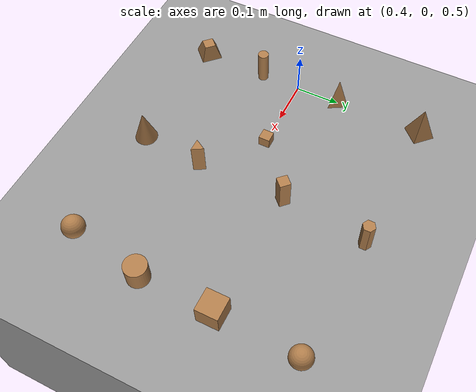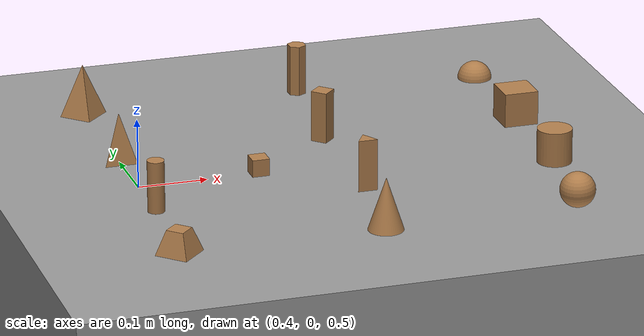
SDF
<sdf version="1.6">
 <world name="default">
  <model name="ground_plane">
   <static>1</static>
   <link name="link">
    <collision name="collision">
     <geometry><plane><normal>0 0 1</normal><size>100 100</size></plane></geometry>
     <surface>
      <contact><collide_bitmask>65535</collide_bitmask></contact>
      <friction><ode><mu>100</mu><mu2>50</mu2></ode></friction>
     </surface>
    </collision>
    <visual name="visual">
     <cast_shadows>0</cast_shadows>
     <geometry><plane><normal>0 0 1</normal><size>100 100</size></plane></geometry>
     <material>
      <script><uri>file://media/materials/scripts/gazebo.material</uri><name>Gazebo/Grey</name></script>
     </material>
    </visual>
   </link>
  </model>
  <light name="sun" type="directional">
   <pose>0 0 10 0 -0 0</pose>
   <diffuse>0.8 0.8 0.8 1</diffuse>
   <specular>0.2 0.2 0.2 1</specular>
   <attenuation>
    <range>1000</range>
    <constant>0.9</constant>
    <linear>0.01</linear>
    <quadratic>0.001</quadratic>
   </attenuation>
   <direction>-0.5 0.1 -0.9</direction>
  </light>
  <gravity>0 0 -9.8</gravity>
  <magnetic_field>6e-06 2.3e-05 -4.2e-05</magnetic_field>
  <atmosphere type="adiabatic"/>
  <physics name="default_physics" default="0" type="ode">
   <max_step_size>0.001</max_step_size>
   <real_time_factor>1</real_time_factor>
   <real_time_update_rate>1000</real_time_update_rate>
  </physics>
  <scene><ambient>0.4 0.4 0.4 1</ambient><background>0.7 0.7 0.7 1</background><shadows>1</shadows></scene>
  <spherical_coordinates>
   <surface_model>EARTH_WGS84</surface_model>
   <latitude_deg>0</latitude_deg>
   <longitude_deg>0</longitude_deg>
   <elevation>0</elevation>
   <heading_deg>0</heading_deg>
  </spherical_coordinates>
  <model name="cuboid_3">
   <link name="cuboid_3">
    <inertial>
     <mass>1</mass>
     <inertia><ixx>1</ixx><ixy>0</ixy><ixz>0</ixz><iyy>1</iyy><iyz>0</iyz><izz>1</izz></inertia>
    </inertial>
    <collision name="cuboid_3_collision">
     <geometry>
      <mesh>
       <scale>1 1 1</scale>
       <uri>/home/cheng/catkin_ws/src/object/object_description/meshes/cuboid_3.stl</uri>
      </mesh>
     </geometry>
     <surface>
      <contact><ode><kp>1e+06</kp><kd>1</kd></ode></contact>
      <friction><ode><mu>50</mu><mu2>50</mu2></ode></friction>
     </surface>
    </collision>
    <visual name="cuboid_3_visual">
     <geometry>
      <mesh>
       <scale>1 1 1</scale>
       <uri>/home/cheng/catkin_ws/src/object/object_description/meshes/cuboid_3.stl</uri>
      </mesh>
     </geometry>
     <material>
      <script><name>Gazebo/Wood</name><uri>file://media/materials/scripts/gazebo.material</uri></script>
     </material>
    </visual>
   </link>
   <pose>0.69998 -0.100001 0.537098 2.5e-05 4.6e-05 -0.000161</pose>
  </model>
  <model name="centrum_6">
   <link name="centrum_6">
    <inertial>
     <mass>1</mass>
     <inertia><ixx>1</ixx><ixy>0</ixy><ixz>0</ixz><iyy>1</iyy><iyz>0</iyz><izz>1</izz></inertia>
    </inertial>
    <collision name="centrum_6_collision">
     <geometry>
      <mesh>
       <scale>1 1 1</scale>
       <uri>/home/cheng/catkin_ws/src/object/object_description/meshes/centrum_6.stl</uri>
      </mesh>
     </geometry>
     <surface>
      <contact><ode><kp>1e+06</kp><kd>1</kd></ode></contact>
      <friction><ode><mu>50</mu><mu2>50</mu2></ode></friction>
     </surface>
    </collision>
    <visual name="centrum_6_visual">
     <geometry>
      <mesh>
       <scale>1 1 1</scale>
       <uri>/home/cheng/catkin_ws/src/object/object_description/meshes/centrum_6.stl</uri>
      </mesh>
     </geometry>
     <material>
      <script><name>Gazebo/Wood</name><uri>file://media/materials/scripts/gazebo.material</uri></script>
     </material>
    </visual>
   </link>
   <pose>0.390483 -0.243495 0.517109 0.00046 0.000254 0.000183</pose>
  </model>
  <model name="ball">
   <link name="ball">
    <inertial>
     <mass>1</mass>
     <inertia><ixx>1</ixx><ixy>0</ixy><ixz>0</ixz><iyy>1</iyy><iyz>0</iyz><izz>1</izz></inertia>
    </inertial>
    <collision name="ball_collision">
     <geometry>
      <mesh>
       <scale>1 1 1</scale>
       <uri>/home/cheng/catkin_ws/src/object/object_description/meshes/ball.stl</uri>
      </mesh>
     </geometry>
     <surface>
      <contact><ode><kp>1e+06</kp><kd>1</kd></ode></contact>
      <friction><ode><mu>50</mu><mu2>50</mu2></ode></friction>
     </surface>
    </collision>
    <visual name="ball_visual">
     <geometry>
      <mesh>
       <scale>1 1 1</scale>
       <uri>/home/cheng/catkin_ws/src/object/object_description/meshes/ball.stl</uri>
      </mesh>
     </geometry>
     <material>
      <script><name>Gazebo/Wood</name><uri>file://media/materials/scripts/gazebo.material</uri></script>
     </material>
    </visual>
   </link>
   <pose>0.956489 -0.248106 0.524471 0.069188 -0.056644 -0.001646</pose>
  </model>
  <model name="cuboid_4">
   <link name="cuboid_4">
    <inertial>
     <mass>1</mass>
     <inertia><ixx>1</ixx><ixy>0</ixy><ixz>0</ixz><iyy>1</iyy><iyz>0</iyz><izz>1</izz></inertia>
    </inertial>
    <collision name="cuboid_4_collision">
     <geometry>
      <mesh>
       <scale>1 1 1</scale>
       <uri>/home/cheng/catkin_ws/src/object/object_description/meshes/cuboid_4.stl</uri>
      </mesh>
     </geometry>
     <surface>
      <contact><ode><kp>1e+06</kp><kd>1</kd></ode></contact>
      <friction><ode><mu>50</mu><mu2>50</mu2></ode></friction>
     </surface>
    </collision>
    <visual name="cuboid_4_visual">
     <geometry>
      <mesh>
       <scale>1 1 1</scale>
       <uri>/home/cheng/catkin_ws/src/object/object_description/meshes/cuboid_4.stl</uri>
      </mesh>
     </geometry>
     <material>
      <script><name>Gazebo/Wood</name><uri>file://media/materials/scripts/gazebo.material</uri></script>
     </material>
    </visual>
   </link>
   <pose>0.700006 0.099971 0.537106 0.000731 0.000664 0.000177</pose>
  </model>
  <model name="square_50">
   <link name="square_50">
    <inertial>
     <mass>1</mass>
     <inertia><ixx>1</ixx><ixy>0</ixy><ixz>0</ixz><iyy>1</iyy><iyz>0</iyz><izz>1</izz></inertia>
    </inertial>
    <collision name="square_50_collision">
     <geometry>
      <mesh>
       <scale>1 1 1</scale>
       <uri>/home/cheng/catkin_ws/src/object/object_description/meshes/square_50.stl</uri>
      </mesh>
     </geometry>
     <surface>
      <contact><ode><kp>1e+06</kp><kd>1</kd></ode></contact>
      <friction><ode><mu>50</mu><mu2>50</mu2></ode></friction>
     </surface>
    </collision>
    <visual name="square_50_visual">
     <geometry>
      <mesh>
       <scale>1 1 1</scale>
       <uri>/home/cheng/catkin_ws/src/object/object_description/meshes/square_50.stl</uri>
      </mesh>
     </geometry>
     <material>
      <script><name>Gazebo/Wood</name><uri>file://media/materials/scripts/gazebo.material</uri></script>
     </material>
    </visual>
   </link>
   <pose>0.989285 0.090127 0.524601 0.000644 -8e-06 -0.000173</pose>
  </model>
  <model name="centrum_4">
   <link name="centrum_4">
    <inertial>
     <mass>1</mass>
     <inertia><ixx>1</ixx><ixy>0</ixy><ixz>0</ixz><iyy>1</iyy><iyz>0</iyz><izz>1</izz></inertia>
    </inertial>
    <collision name="centrum_4_collision">
     <geometry>
      <mesh>
       <scale>1 1 1</scale>
       <uri>/home/cheng/catkin_ws/src/object/object_description/meshes/centrum_4.stl</uri>
      </mesh>
     </geometry>
     <surface>
      <contact><ode><kp>1e+06</kp><kd>1</kd></ode></contact>
      <friction><ode><mu>50</mu><mu2>50</mu2></ode></friction>
     </surface>
    </collision>
    <visual name="centrum_4_visual">
     <geometry>
      <mesh>
       <scale>1 1 1</scale>
       <uri>/home/cheng/catkin_ws/src/object/object_description/meshes/centrum_4.stl</uri>
      </mesh>
     </geometry>
     <material>
      <script><name>Gazebo/Wood</name><uri>file://media/materials/scripts/gazebo.material</uri></script>
     </material>
    </visual>
   </link>
   <pose>0.400014 0.099978 0.536612 0.000591 0.001045 0.000468</pose>
  </model>
  <model name="square_25">
   <link name="square_25">
    <inertial>
     <mass>1</mass>
     <inertia><ixx>1</ixx><ixy>0</ixy><ixz>0</ixz><iyy>1</iyy><iyz>0</iyz><izz>1</izz></inertia>
    </inertial>
    <collision name="square_25_collision">
     <geometry>
      <mesh>
       <scale>1 1 1</scale>
       <uri>/home/cheng/catkin_ws/src/object/object_description/meshes/square_25.stl</uri>
      </mesh>
     </geometry>
     <surface>
      <contact><ode><kp>1e+06</kp><kd>1</kd></ode></contact>
      <friction><ode><mu>50</mu><mu2>50</mu2></ode></friction>
     </surface>
    </collision>
    <visual name="square_25_visual">
     <geometry>
      <mesh>
       <scale>1 1 1</scale>
       <uri>/home/cheng/catkin_ws/src/object/object_description/meshes/square_25.stl</uri>
      </mesh>
     </geometry>
     <material>
      <script><name>Gazebo/Wood</name><uri>file://media/materials/scripts/gazebo.material</uri></script>
     </material>
    </visual>
   </link>
   <pose>0.575018 0.000953 0.512111 0.000568 1.7e-05 -0.000328</pose>
  </model>
  <model name="table">
   <link name="table">
    <inertial>
     <pose>0 0 0.25 0 -0 0</pose>
     <mass>10.8</mass>
     <inertia><ixx>32.625</ixx><ixy>0</ixy><ixz>0</ixz><iyy>32.625</iyy><iyz>0</iyz><izz>64.8</izz></inertia>
    </inertial>
    <collision name="table_collision">
     <pose>0 0 0.25 0 -0 0</pose>
     <geometry><box><size>6 6 0.5</size></box></geometry>
     <surface>
      <contact><ode><kp>1e+06</kp><kd>1</kd></ode></contact>
      <friction><ode><mu>50</mu><mu2>50</mu2></ode></friction>
     </surface>
    </collision>
    <visual name="table_visual">
     <pose>0 0 0.25 0 -0 0</pose>
     <geometry><box><size>6 6 0.5</size></box></geometry>
     <material>
      <script><name>Gazebo/Grey</name><uri>file://media/materials/scripts/gazebo.material</uri></script>
     </material>
    </visual>
   </link>
   <pose>-0.232879 0.453693 -0.000342 1.1e-05 2.2e-05 -1e-06</pose>
  </model>
  <model name="cylinder_50">
   <link name="cylinder_50">
    <inertial>
     <mass>1</mass>
     <inertia><ixx>1</ixx><ixy>0</ixy><ixz>0</ixz><iyy>1</iyy><iyz>0</iyz><izz>1</izz></inertia>
    </inertial>
    <collision name="cylinder_50_collision">
     <geometry>
      <mesh>
       <scale>1 1 1</scale>
       <uri>/home/cheng/catkin_ws/src/object/object_description/meshes/cylinder_50.stl</uri>
      </mesh>
     </geometry>
     <surface>
      <contact><ode><kp>1e+06</kp><kd>1</kd></ode></contact>
      <friction><ode><mu>50</mu><mu2>50</mu2></ode></friction>
     </surface>
    </collision>
    <visual name="cylinder_50_visual">
     <geometry>
      <mesh>
       <scale>1 1 1</scale>
       <uri>/home/cheng/catkin_ws/src/object/object_description/meshes/cylinder_50.stl</uri>
      </mesh>
     </geometry>
     <material>
      <script><name>Gazebo/Wood</name><uri>file://media/materials/scripts/gazebo.material</uri></script>
     </material>
    </visual>
   </link>
   <pose>0.985512 -0.079387 0.524642 0.002358 -0.003499 -0.000306</pose>
  </model>
  <model name="centrum_5">
   <link name="centrum_5">
    <inertial>
     <mass>1</mass>
     <inertia><ixx>1</ixx><ixy>0</ixy><ixz>0</ixz><iyy>1</iyy><iyz>0</iyz><izz>1</izz></inertia>
    </inertial>
    <collision name="centrum_5_collision">
     <geometry>
      <mesh>
       <scale>1 1 1</scale>
       <uri>/home/cheng/catkin_ws/src/object/object_description/meshes/centrum_5.stl</uri>
      </mesh>
     </geometry>
     <surface>
      <contact><ode><kp>1e+06</kp><kd>1</kd></ode></contact>
      <friction><ode><mu>50</mu><mu2>50</mu2></ode></friction>
     </surface>
    </collision>
    <visual name="centrum_5_visual">
     <geometry>
      <mesh>
       <scale>1 1 1</scale>
       <uri>/home/cheng/catkin_ws/src/object/object_description/meshes/centrum_5.stl</uri>
      </mesh>
     </geometry>
     <material>
      <script><name>Gazebo/Wood</name><uri>file://media/materials/scripts/gazebo.material</uri></script>
     </material>
    </visual>
   </link>
   <pose>0.399985 0.299982 0.53762 0.000321 8.9e-05 0.0003</pose>
  </model>
  <model name="half_ball">
   <link name="half_ball">
    <inertial>
     <mass>1</mass>
     <inertia><ixx>1</ixx><ixy>0</ixy><ixz>0</ixz><iyy>1</iyy><iyz>0</iyz><izz>1</izz></inertia>
    </inertial>
    <collision name="half_ball_collision">
     <geometry>
      <mesh>
       <scale>1 1 1</scale>
       <uri>/home/cheng/catkin_ws/src/object/object_description/meshes/half_ball.stl</uri>
      </mesh>
     </geometry>
     <surface>
      <contact><ode><kp>1e+06</kp><kd>1</kd></ode></contact>
      <friction><ode><mu>50</mu><mu2>50</mu2></ode></friction>
     </surface>
    </collision>
    <visual name="half_ball_visual">
     <geometry>
      <mesh>
       <scale>1 1 1</scale>
       <uri>/home/cheng/catkin_ws/src/object/object_description/meshes/half_ball.stl</uri>
      </mesh>
     </geometry>
     <material>
      <script><name>Gazebo/Wood</name><uri>file://media/materials/scripts/gazebo.material</uri></script>
     </material>
    </visual>
   </link>
   <pose>0.991768 0.274579 0.499626 -0.001797 -0.001138 -0.000824</pose>
  </model>
  <model name="centrum">
   <link name="centrum">
    <inertial>
     <mass>1</mass>
     <inertia><ixx>1</ixx><ixy>0</ixy><ixz>0</ixz><iyy>1</iyy><iyz>0</iyz><izz>1</izz></inertia>
    </inertial>
    <collision name="centrum_collision">
     <geometry>
      <mesh>
       <scale>1 1 1</scale>
       <uri>/home/cheng/catkin_ws/src/object/object_description/meshes/centrum.stl</uri>
      </mesh>
     </geometry>
     <surface>
      <contact><ode><kp>1e+06</kp><kd>1</kd></ode></contact>
      <friction><ode><mu>50</mu><mu2>50</mu2></ode></friction>
     </surface>
    </collision>
    <visual name="centrum_visual">
     <geometry>
      <mesh>
       <scale>1 1 1</scale>
       <uri>/home/cheng/catkin_ws/src/object/object_description/meshes/centrum.stl</uri>
      </mesh>
     </geometry>
     <material>
      <script><name>Gazebo/Wood</name><uri>file://media/materials/scripts/gazebo.material</uri></script>
     </material>
    </visual>
   </link>
   <pose>0.679837 -0.248021 0.537126 0.002382 0.000678 -0.001144</pose>
  </model>
  <model name="cylinder_75">
   <link name="cylinder_75">
    <inertial>
     <mass>1</mass>
     <inertia><ixx>1</ixx><ixy>0</ixy><ixz>0</ixz><iyy>1</iyy><iyz>0</iyz><izz>1</izz></inertia>
    </inertial>
    <collision name="cylinder_75_collision">
     <geometry>
      <mesh>
       <scale>1 1 1</scale>
       <uri>/home/cheng/catkin_ws/src/object/object_description/meshes/cylinder_75.stl</uri>
      </mesh>
     </geometry>
     <surface>
      <contact><ode><kp>1e+06</kp><kd>1</kd></ode></contact>
      <friction><ode><mu>50</mu><mu2>50</mu2></ode></friction>
     </surface>
    </collision>
    <visual name="cylinder_75_visual">
     <geometry>
      <mesh>
       <scale>1 1 1</scale>
       <uri>/home/cheng/catkin_ws/src/object/object_description/meshes/cylinder_75.stl</uri>
      </mesh>
     </geometry>
     <material>
      <script><name>Gazebo/Wood</name><uri>file://media/materials/scripts/gazebo.material</uri></script>
     </material>
    </visual>
   </link>
   <pose>0.400784 -0.091262 0.53714 0.005087 -0.004285 0.0087</pose>
  </model>
  <model name="prisms_6">
   <link name="prisms_6">
    <inertial>
     <mass>1</mass>
     <inertia><ixx>1</ixx><ixy>0</ixy><ixz>0</ixz><iyy>1</iyy><iyz>0</iyz><izz>1</izz></inertia>
    </inertial>
    <collision name="prisms_6_collision">
     <geometry>
      <mesh>
       <scale>1 1 1</scale>
       <uri>/home/cheng/catkin_ws/src/object/object_description/meshes/prisms_6.stl</uri>
      </mesh>
     </geometry>
     <surface>
      <contact><ode><kp>1e+06</kp><kd>1</kd></ode></contact>
      <friction><ode><mu>50</mu><mu2>50</mu2></ode></friction>
     </surface>
    </collision>
    <visual name="prisms_6_visual">
     <geometry>
      <mesh>
       <scale>1 1 1</scale>
       <uri>/home/cheng/catkin_ws/src/object/object_description/meshes/prisms_6.stl</uri>
      </mesh>
     </geometry>
     <material>
      <script><name>Gazebo/Wood</name><uri>file://media/materials/scripts/gazebo.material</uri></script>
     </material>
    </visual>
   </link>
   <pose>0.721392 0.29324 0.537116 0.000276 0.001196 -0.001214</pose>
  </model>
 </world>
</sdf>
